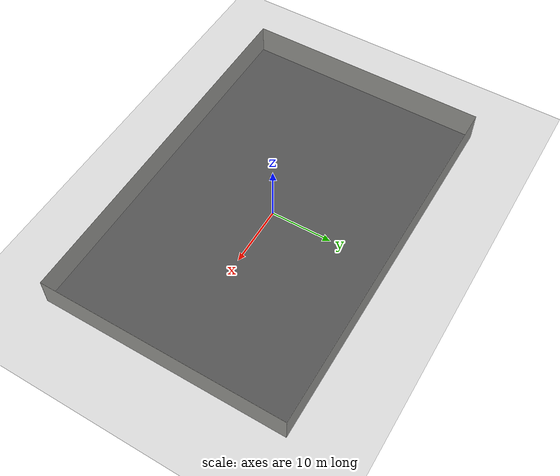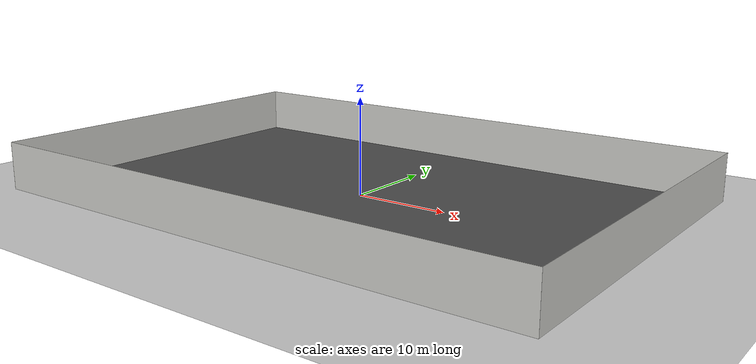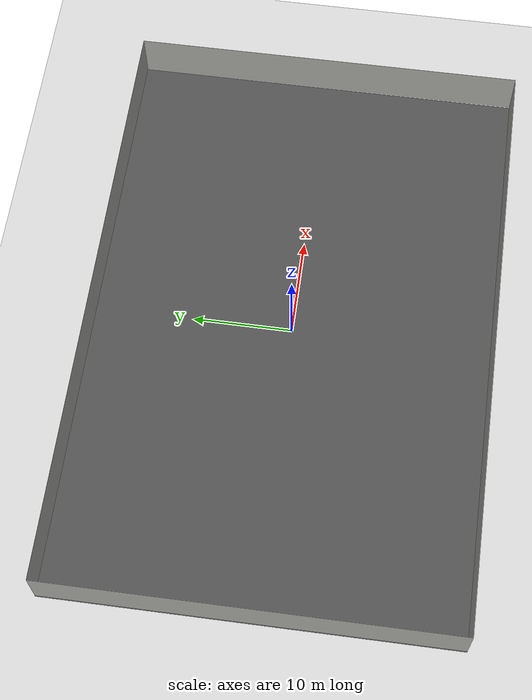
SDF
<sdf version="1.6">
 <world name="default">
  <light name="sun" type="directional">
   <pose>0 0 10 0 -0 0</pose>
   <diffuse>0.8 0.8 0.8 1</diffuse>
   <specular>0.1 0.1 0.1 1</specular>
   <attenuation>
    <range>1000</range>
    <constant>0.9</constant>
    <linear>0.01</linear>
    <quadratic>0.001</quadratic>
   </attenuation>
   <direction>-0.5 0.5 -1</direction>
  </light>
  <model name="ground_plane">
   <static>1</static>
   <link name="link">
    <collision name="collision">
     <geometry><plane><normal>0 0 1</normal><size>100 100</size></plane></geometry>
     <surface><friction><ode><mu>100</mu><mu2>50</mu2></ode></friction></surface>
    </collision>
    <visual name="visual">
     <cast_shadows>0</cast_shadows>
     <geometry><plane><normal>0 0 1</normal><size>100 100</size></plane></geometry>
     <material>
      <script><uri>file://media/materials/scripts/gazebo.material</uri><name>Gazebo/Grey</name></script>
     </material>
    </visual>
   </link>
  </model>
  <gravity>0 0 -9.8</gravity>
  <magnetic_field>6e-06 2.3e-05 -4.2e-05</magnetic_field>
  <atmosphere type="adiabatic"/>
  <physics name="default_physics" default="0" type="ode">
   <max_step_size>0.01</max_step_size>
   <real_time_factor>1</real_time_factor>
   <real_time_update_rate>100</real_time_update_rate>
  </physics>
  <scene><ambient>0.4 0.4 0.4 1</ambient><background>0.7 0.7 0.7 1</background><shadows>0</shadows></scene>
  <spherical_coordinates>
   <surface_model>EARTH_WGS84</surface_model>
   <latitude_deg>0</latitude_deg>
   <longitude_deg>0</longitude_deg>
   <elevation>0</elevation>
   <heading_deg>0</heading_deg>
  </spherical_coordinates>
  <model name="floor_40m">
   <link name="link">
    <inertial>
     <mass>1</mass>
     <inertia><ixx>1</ixx><ixy>0</ixy><ixz>0</ixz><iyy>1</iyy><iyz>0</iyz><izz>1</izz></inertia>
    </inertial>
    <visual name="visual">
     <cast_shadows>0</cast_shadows>
     <geometry><box><size>60 40 0.01</size></box></geometry>
     <material>
      <script>
       <uri>model://asphalt_plane/materials/scripts</uri>
       <uri>model://asphalt_plane/materials/textures</uri>
       <name>vrc/asphalt</name>
      </script>
      <ambient>0.45 0.36 0.19 0.5</ambient>
      <diffuse>0.45 0.36 0.19 0.5</diffuse>
      <specular>0.45 0.36 0.19 0.5</specular>
      <emissive>0.45 0.36 0.19 0.5</emissive>
      <shader type="vertex"><normal_map>__default__</normal_map></shader>
     </material>
    </visual>
    <collision name="collision">
     <geometry><box><size>60 60 0.01</size></box></geometry>
     <surface>
      <friction>
       <ode><mu>1</mu><mu2>1</mu2><fdir1>0 0 0</fdir1><slip1>0</slip1><slip2>0</slip2></ode>
       <torsional>
        <coefficient>1</coefficient>
        <patch_radius>0</patch_radius>
        <surface_radius>0</surface_radius>
        <use_patch_radius>1</use_patch_radius>
        <ode><slip>0</slip></ode>
       </torsional>
      </friction>
      <bounce><restitution_coefficient>0</restitution_coefficient><threshold>1e+06</threshold></bounce>
      <contact>
       <collide_without_contact>0</collide_without_contact>
       <collide_without_contact_bitmask>1</collide_without_contact_bitmask>
       <collide_bitmask>1</collide_bitmask>
       <ode>
        <soft_cfm>0</soft_cfm>
        <soft_erp>0.2</soft_erp>
        <kp>1e+13</kp>
        <kd>1</kd>
        <max_vel>0.01</max_vel>
        <min_depth>0</min_depth>
       </ode>
       <bullet>
        <split_impulse>1</split_impulse>
        <split_impulse_penetration_threshold>-0.01</split_impulse_penetration_threshold>
        <soft_cfm>0</soft_cfm>
        <soft_erp>0.2</soft_erp>
        <kp>1e+13</kp>
        <kd>1</kd>
       </bullet>
      </contact>
     </surface>
    </collision>
   </link>
   <static>1</static>
   <pose>-0.100094 0 0.01 0 -0 0</pose>
  </model>
  <model name="wall_40m">
   <link name="Wall_10">
    <pose>0 20 0 0 -0 0</pose>
    <inertial>
     <mass>1</mass>
     <inertia><ixx>1</ixx><ixy>0</ixy><ixz>0</ixz><iyy>1</iyy><iyz>0</iyz><izz>1</izz></inertia>
    </inertial>
    <visual name="Wall_10_Visual">
     <pose>0 0 2.5 0 -0 0</pose>
     <geometry><box><size>60.01 0.01 5</size></box></geometry>
     <material>
      <script><uri>file://media/materials/scripts/gazebo.material</uri><name>Gazebo/CeilingTiled</name></script>
      <ambient>1 1 1 1</ambient>
      <shader type="pixel"><normal_map>__default__</normal_map></shader>
      <diffuse>1 1 1 1</diffuse>
      <specular>0 0 0 1</specular>
      <emissive>0 0 0 1</emissive>
     </material>
     <meta><layer>0</layer></meta>
    </visual>
    <collision name="Wall_10_Collision">
     <pose>0 0 2.5 0 -0 0</pose>
     <geometry><box><size>60.01 0.01 5</size></box></geometry>
     <surface>
      <friction>
       <ode><mu>1</mu><mu2>1</mu2><fdir1>0 0 0</fdir1><slip1>0</slip1><slip2>0</slip2></ode>
       <torsional>
        <coefficient>1</coefficient>
        <patch_radius>0</patch_radius>
        <surface_radius>0</surface_radius>
        <use_patch_radius>1</use_patch_radius>
        <ode><slip>0</slip></ode>
       </torsional>
      </friction>
      <bounce><restitution_coefficient>0</restitution_coefficient><threshold>1e+06</threshold></bounce>
      <contact>
       <collide_without_contact>0</collide_without_contact>
       <collide_without_contact_bitmask>1</collide_without_contact_bitmask>
       <collide_bitmask>1</collide_bitmask>
       <ode>
        <soft_cfm>0</soft_cfm>
        <soft_erp>0.2</soft_erp>
        <kp>1e+13</kp>
        <kd>1</kd>
        <max_vel>0.01</max_vel>
        <min_depth>0</min_depth>
       </ode>
       <bullet>
        <split_impulse>1</split_impulse>
        <split_impulse_penetration_threshold>-0.01</split_impulse_penetration_threshold>
        <soft_cfm>0</soft_cfm>
        <soft_erp>0.2</soft_erp>
        <kp>1e+13</kp>
        <kd>1</kd>
       </bullet>
      </contact>
     </surface>
    </collision>
   </link>
   <link name="Wall_11">
    <pose>30 0 0 0 0 -1.57021</pose>
    <inertial>
     <mass>1</mass>
     <inertia><ixx>1</ixx><ixy>0</ixy><ixz>0</ixz><iyy>1</iyy><iyz>0</iyz><izz>1</izz></inertia>
    </inertial>
    <visual name="Wall_11_Visual">
     <pose>0 0 2.5 0 -0 0</pose>
     <geometry><box><size>40.01 0.01 5</size></box></geometry>
     <material>
      <script><uri>file://media/materials/scripts/gazebo.material</uri><name>Gazebo/CeilingTiled</name></script>
      <ambient>1 1 1 1</ambient>
      <shader type="pixel"><normal_map>__default__</normal_map></shader>
      <diffuse>1 1 1 1</diffuse>
      <specular>0 0 0 1</specular>
      <emissive>0 0 0 1</emissive>
     </material>
     <meta><layer>0</layer></meta>
    </visual>
    <collision name="Wall_11_Collision">
     <pose>0 0 2.5 0 -0 0</pose>
     <geometry><box><size>40.01 0.01 5</size></box></geometry>
     <surface>
      <friction>
       <ode><mu>1</mu><mu2>1</mu2><fdir1>0 0 0</fdir1><slip1>0</slip1><slip2>0</slip2></ode>
       <torsional>
        <coefficient>1</coefficient>
        <patch_radius>0</patch_radius>
        <surface_radius>0</surface_radius>
        <use_patch_radius>1</use_patch_radius>
        <ode><slip>0</slip></ode>
       </torsional>
      </friction>
      <bounce><restitution_coefficient>0</restitution_coefficient><threshold>1e+06</threshold></bounce>
      <contact>
       <collide_without_contact>0</collide_without_contact>
       <collide_without_contact_bitmask>1</collide_without_contact_bitmask>
       <collide_bitmask>1</collide_bitmask>
       <ode>
        <soft_cfm>0</soft_cfm>
        <soft_erp>0.2</soft_erp>
        <kp>1e+13</kp>
        <kd>1</kd>
        <max_vel>0.01</max_vel>
        <min_depth>0</min_depth>
       </ode>
       <bullet>
        <split_impulse>1</split_impulse>
        <split_impulse_penetration_threshold>-0.01</split_impulse_penetration_threshold>
        <soft_cfm>0</soft_cfm>
        <soft_erp>0.2</soft_erp>
        <kp>1e+13</kp>
        <kd>1</kd>
       </bullet>
      </contact>
     </surface>
    </collision>
   </link>
   <link name="Wall_12">
    <pose>0 -20 0 0 -0 3.14159</pose>
    <inertial>
     <mass>1</mass>
     <inertia><ixx>1</ixx><ixy>0</ixy><ixz>0</ixz><iyy>1</iyy><iyz>0</iyz><izz>1</izz></inertia>
    </inertial>
    <visual name="Wall_12_Visual">
     <pose>0 0 2.5 0 -0 0</pose>
     <geometry><box><size>60.045 0.01 5</size></box></geometry>
     <material>
      <script><uri>file://media/materials/scripts/gazebo.material</uri><name>Gazebo/CeilingTiled</name></script>
      <ambient>1 1 1 1</ambient>
      <shader type="pixel"><normal_map>__default__</normal_map></shader>
      <diffuse>1 1 1 1</diffuse>
      <specular>0 0 0 1</specular>
      <emissive>0 0 0 1</emissive>
     </material>
     <meta><layer>0</layer></meta>
    </visual>
    <collision name="Wall_12_Collision">
     <pose>0 0 2.5 0 -0 0</pose>
     <geometry><box><size>60.045 0.01 5</size></box></geometry>
     <surface>
      <friction>
       <ode><mu>1</mu><mu2>1</mu2><fdir1>0 0 0</fdir1><slip1>0</slip1><slip2>0</slip2></ode>
       <torsional>
        <coefficient>1</coefficient>
        <patch_radius>0</patch_radius>
        <surface_radius>0</surface_radius>
        <use_patch_radius>1</use_patch_radius>
        <ode><slip>0</slip></ode>
       </torsional>
      </friction>
      <bounce><restitution_coefficient>0</restitution_coefficient><threshold>1e+06</threshold></bounce>
      <contact>
       <collide_without_contact>0</collide_without_contact>
       <collide_without_contact_bitmask>1</collide_without_contact_bitmask>
       <collide_bitmask>1</collide_bitmask>
       <ode>
        <soft_cfm>0</soft_cfm>
        <soft_erp>0.2</soft_erp>
        <kp>1e+13</kp>
        <kd>1</kd>
        <max_vel>0.01</max_vel>
        <min_depth>0</min_depth>
       </ode>
       <bullet>
        <split_impulse>1</split_impulse>
        <split_impulse_penetration_threshold>-0.01</split_impulse_penetration_threshold>
        <soft_cfm>0</soft_cfm>
        <soft_erp>0.2</soft_erp>
        <kp>1e+13</kp>
        <kd>1</kd>
       </bullet>
      </contact>
     </surface>
    </collision>
   </link>
   <link name="Wall_13">
    <pose>-30.0175 0 0 0 -0 1.5708</pose>
    <inertial>
     <mass>1</mass>
     <inertia><ixx>1</ixx><ixy>0</ixy><ixz>0</ixz><iyy>1</iyy><iyz>0</iyz><izz>1</izz></inertia>
    </inertial>
    <visual name="Wall_13_Visual">
     <pose>0 0 2.5 0 -0 0</pose>
     <geometry><box><size>40.01 0.01 5</size></box></geometry>
     <material>
      <script><uri>file://media/materials/scripts/gazebo.material</uri><name>Gazebo/CeilingTiled</name></script>
      <ambient>1 1 1 1</ambient>
      <shader type="pixel"><normal_map>__default__</normal_map></shader>
      <diffuse>1 1 1 1</diffuse>
      <specular>0 0 0 1</specular>
      <emissive>0 0 0 1</emissive>
     </material>
     <meta><layer>0</layer></meta>
    </visual>
    <collision name="Wall_13_Collision">
     <pose>0 0 2.5 0 -0 0</pose>
     <geometry><box><size>40.01 0.01 5</size></box></geometry>
     <surface>
      <friction>
       <ode><mu>1</mu><mu2>1</mu2><fdir1>0 0 0</fdir1><slip1>0</slip1><slip2>0</slip2></ode>
       <torsional>
        <coefficient>1</coefficient>
        <patch_radius>0</patch_radius>
        <surface_radius>0</surface_radius>
        <use_patch_radius>1</use_patch_radius>
        <ode><slip>0</slip></ode>
       </torsional>
      </friction>
      <bounce><restitution_coefficient>0</restitution_coefficient><threshold>1e+06</threshold></bounce>
      <contact>
       <collide_without_contact>0</collide_without_contact>
       <collide_without_contact_bitmask>1</collide_without_contact_bitmask>
       <collide_bitmask>1</collide_bitmask>
       <ode>
        <soft_cfm>0</soft_cfm>
        <soft_erp>0.2</soft_erp>
        <kp>1e+13</kp>
        <kd>1</kd>
        <max_vel>0.01</max_vel>
        <min_depth>0</min_depth>
       </ode>
       <bullet>
        <split_impulse>1</split_impulse>
        <split_impulse_penetration_threshold>-0.01</split_impulse_penetration_threshold>
        <soft_cfm>0</soft_cfm>
        <soft_erp>0.2</soft_erp>
        <kp>1e+13</kp>
        <kd>1</kd>
       </bullet>
      </contact>
     </surface>
    </collision>
   </link>
   <static>1</static>
  </model>
 </world>
</sdf>
